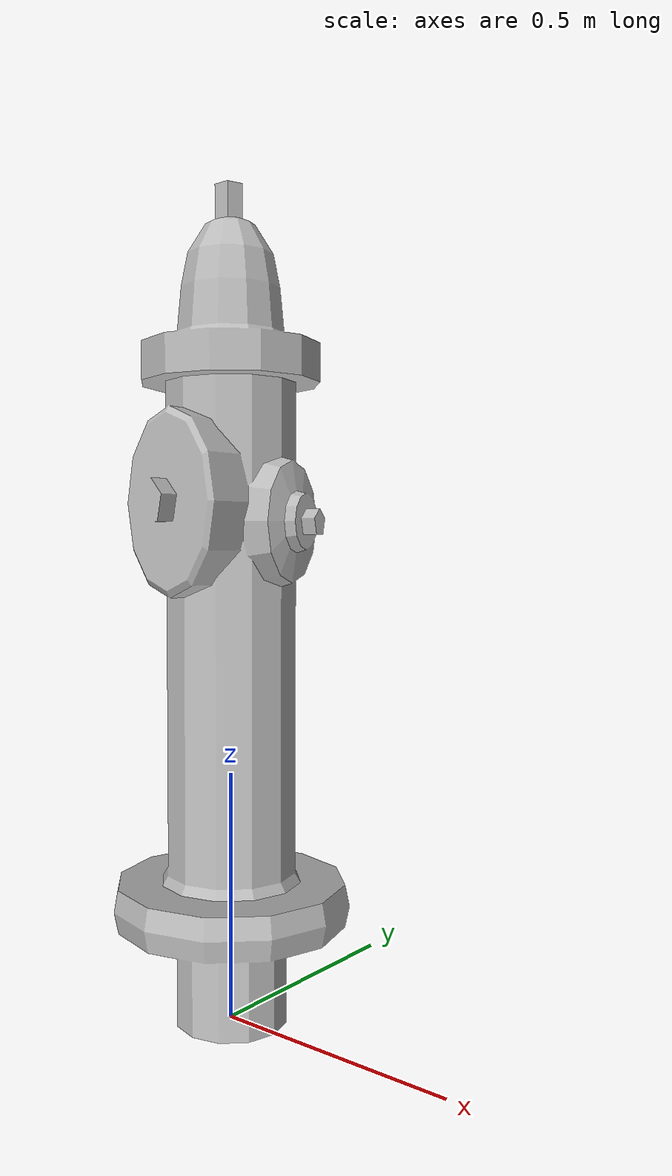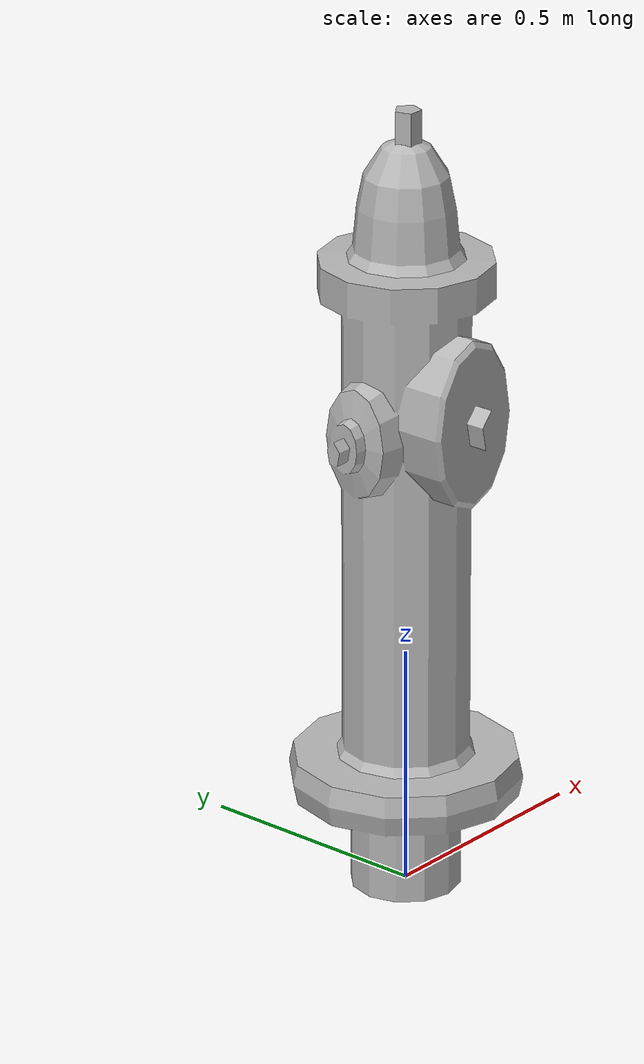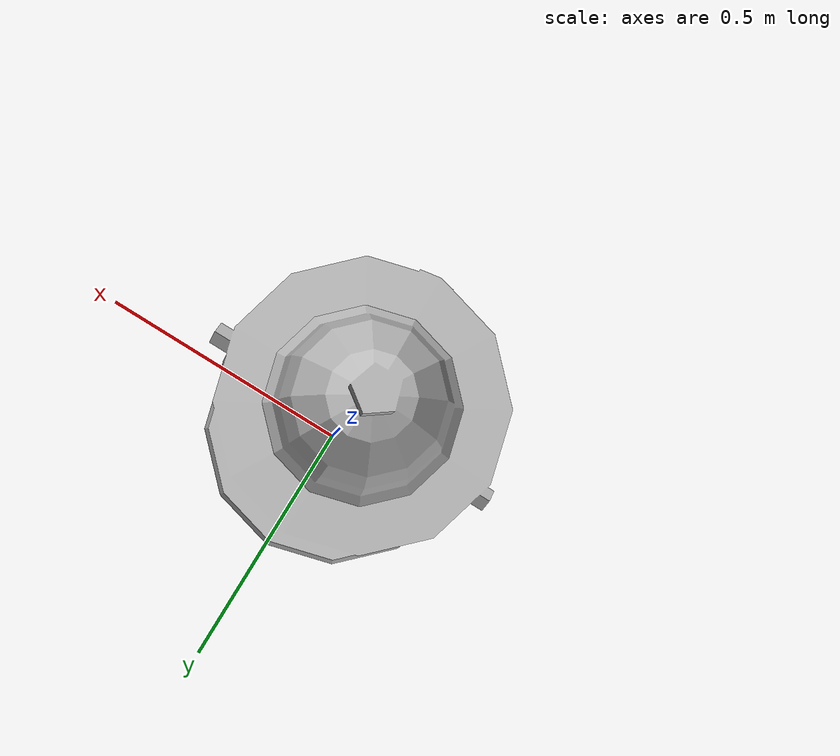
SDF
<sdf version="1.5">
  <model name="fire_hydrant3">
    <static>true</static>
    <link name="link">
      <collision name="collision">
        <geometry>
          <mesh>
            <uri>model://fire_hydrant/meshes/fire_hydrant.dae</uri>
          <scale>1.1302023611231913 1.1302023611231913 1.777203179662479</scale></mesh>
        </geometry>
      </collision>
      <visual name="visual">
        <geometry>
          <mesh>
            <uri>model://fire_hydrant/meshes/fire_hydrant.dae</uri>
          <scale>1.1302023611231913 1.1302023611231913 1.777203179662479</scale></mesh>
        </geometry>
      </visual>
    </link>
  </model>
</sdf>
